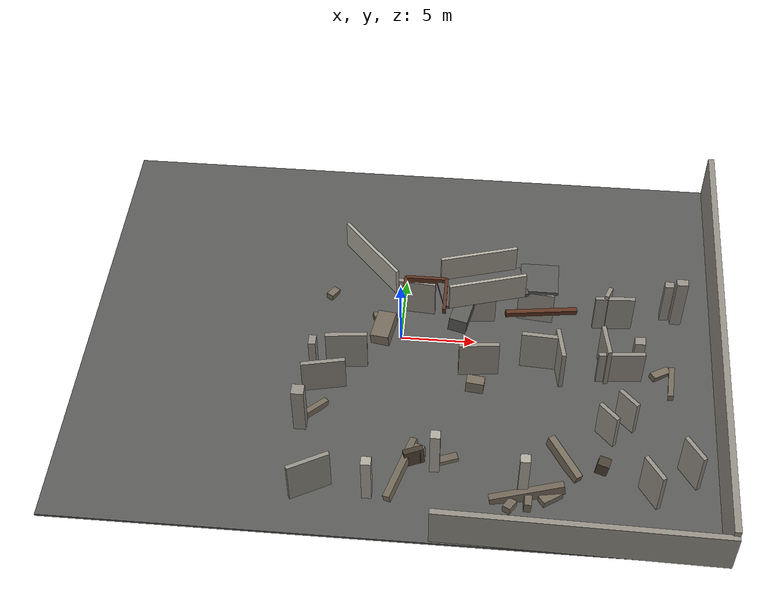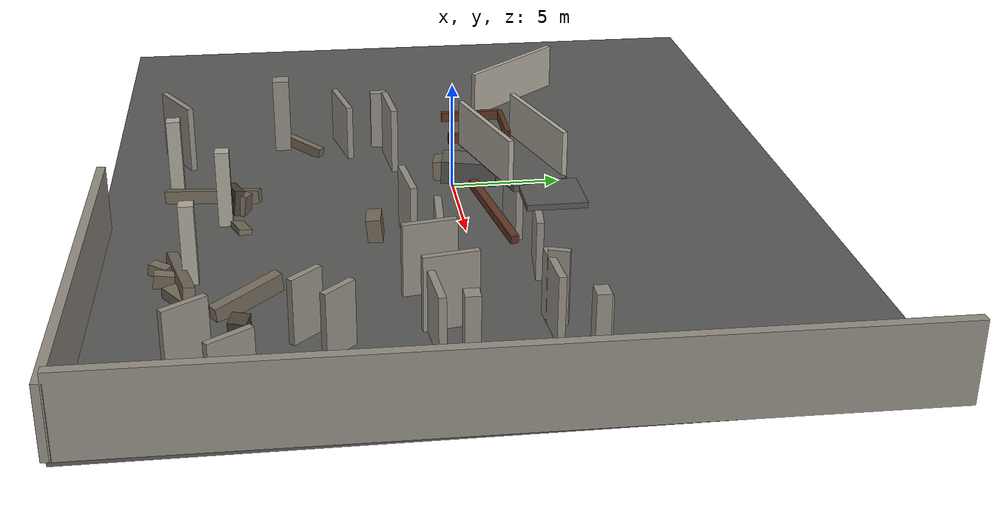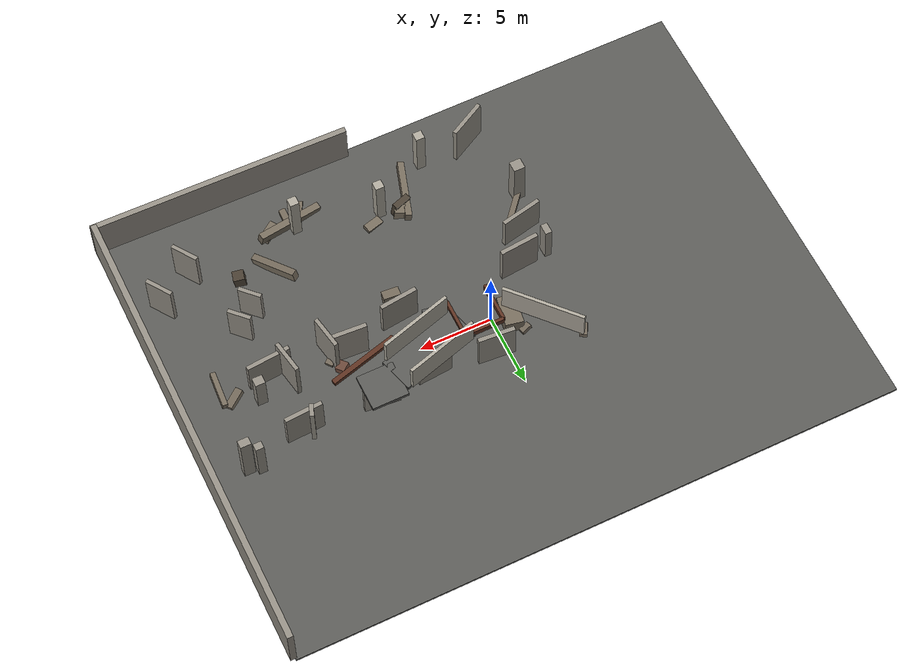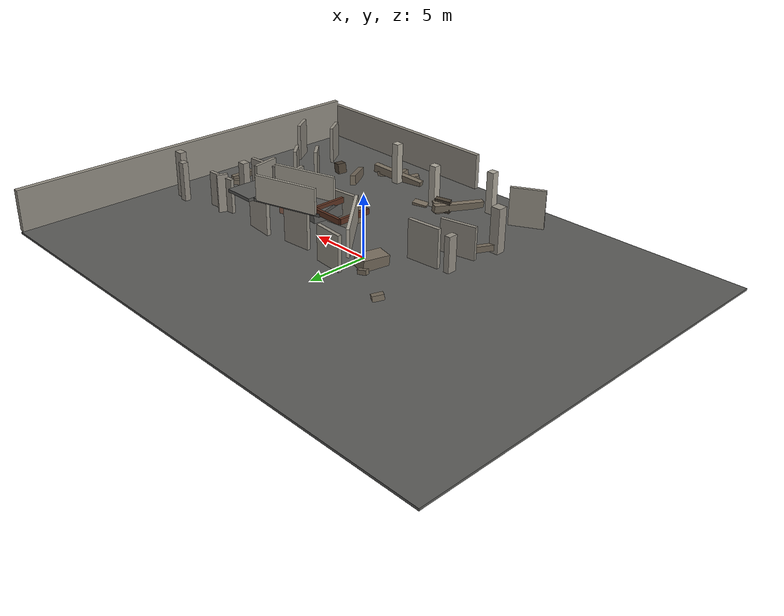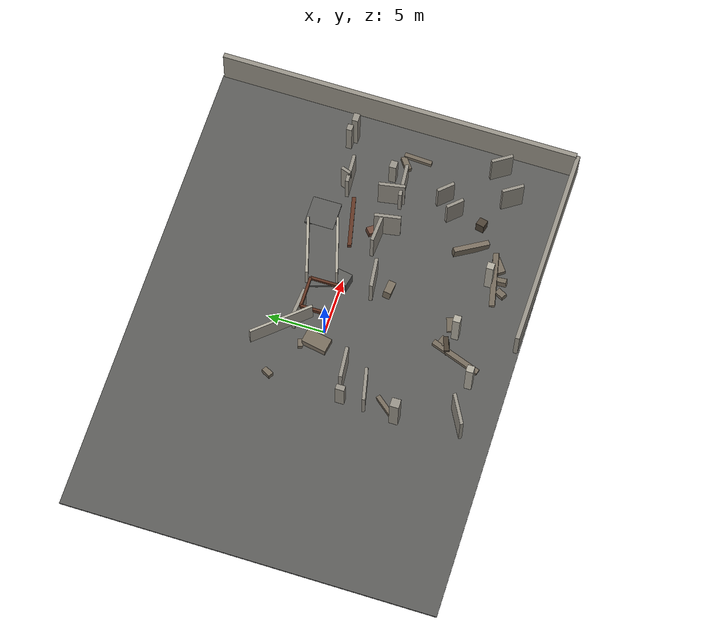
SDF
<sdf version="1.6">
 <model name="ruins_urban_01_medium">
  <static>true</static>
  <link name="000_floor_slab">
   <pose>0.00000 0.00000 -0.08000 0.00000 0.00000 0.00000</pose>
   <visual name="visual">
    <geometry><box><size>42.00000 32.00000 0.16000</size></box></geometry>
    <material>
     <ambient>0.350 0.350 0.340 1</ambient>
     <diffuse>0.350 0.350 0.340 1</diffuse>
     <specular>0.03 0.03 0.03 1</specular>
    </material>
   </visual>
   <collision name="collision">
    <geometry><box><size>42.00000 32.00000 0.16000</size></box></geometry>
    <surface>
     <contact><collide_bitmask>0x01</collide_bitmask></contact>
     <friction><ode><mu>1.0</mu><mu2>1.0</mu2></ode></friction>
    </surface>
   </collision>
  </link>
  <link name="004_south_boundary_east">
   <pose>12.00000 -15.85000 1.50000 0.00000 0.00000 -0.01800</pose>
   <visual name="visual">
    <geometry><box><size>18.00000 0.38000 3.00000</size></box></geometry>
    <material>
     <ambient>0.580 0.560 0.520 1</ambient>
     <diffuse>0.580 0.560 0.520 1</diffuse>
     <specular>0.03 0.03 0.03 1</specular>
    </material>
   </visual>
   <collision name="collision">
    <geometry><box><size>18.00000 0.38000 3.00000</size></box></geometry>
    <surface>
     <contact><collide_bitmask>0x01</collide_bitmask></contact>
     <friction><ode><mu>1.0</mu><mu2>1.0</mu2></ode></friction>
    </surface>
   </collision>
  </link>
  <link name="007_east_boundary">
   <pose>20.95000 0.00000 1.70000 0.00000 0.00000 -0.01000</pose>
   <visual name="visual">
    <geometry><box><size>0.42000 31.80000 3.40000</size></box></geometry>
    <material>
     <ambient>0.580 0.560 0.520 1</ambient>
     <diffuse>0.580 0.560 0.520 1</diffuse>
     <specular>0.03 0.03 0.03 1</specular>
    </material>
   </visual>
   <collision name="collision">
    <geometry><box><size>0.42000 31.80000 3.40000</size></box></geometry>
    <surface>
     <contact><collide_bitmask>0x01</collide_bitmask></contact>
     <friction><ode><mu>1.0</mu><mu2>1.0</mu2></ode></friction>
    </surface>
   </collision>
  </link>
  <link name="025_ground_corridor_s4_s5_right">
   <pose>-4.53651 -12.80806 1.57500 0.00000 0.00000 0.49935</pose>
   <visual name="visual">
    <geometry><box><size>2.76498 0.28000 3.15000</size></box></geometry>
    <material>
     <ambient>0.580 0.560 0.520 1</ambient>
     <diffuse>0.580 0.560 0.520 1</diffuse>
     <specular>0.03 0.03 0.03 1</specular>
    </material>
   </visual>
   <collision name="collision">
    <geometry><box><size>2.76498 0.28000 3.15000</size></box></geometry>
    <surface>
     <contact><collide_bitmask>0x01</collide_bitmask></contact>
     <friction><ode><mu>1.0</mu><mu2>1.0</mu2></ode></friction>
    </surface>
   </collision>
  </link>
  <link name="027_ground_corridor_g7_en1_right">
   <pose>13.64929 2.43806 1.57500 0.00000 0.00000 1.22007</pose>
   <visual name="visual">
    <geometry><box><size>0.86578 0.28000 3.15000</size></box></geometry>
    <material>
     <ambient>0.580 0.560 0.520 1</ambient>
     <diffuse>0.580 0.560 0.520 1</diffuse>
     <specular>0.03 0.03 0.03 1</specular>
    </material>
   </visual>
   <collision name="collision">
    <geometry><box><size>0.86578 0.28000 3.15000</size></box></geometry>
    <surface>
     <contact><collide_bitmask>0x01</collide_bitmask></contact>
     <friction><ode><mu>1.0</mu><mu2>1.0</mu2></ode></friction>
    </surface>
   </collision>
  </link>
  <link name="032_ground_corridor_g7_es1_left">
   <pose>13.46759 -1.69253 1.57500 0.00000 0.00000 -1.39713</pose>
   <visual name="visual">
    <geometry><box><size>2.28705 0.28000 3.15000</size></box></geometry>
    <material>
     <ambient>0.580 0.560 0.520 1</ambient>
     <diffuse>0.580 0.560 0.520 1</diffuse>
     <specular>0.03 0.03 0.03 1</specular>
    </material>
   </visual>
   <collision name="collision">
    <geometry><box><size>2.28705 0.28000 3.15000</size></box></geometry>
    <surface>
     <contact><collide_bitmask>0x01</collide_bitmask></contact>
     <friction><ode><mu>1.0</mu><mu2>1.0</mu2></ode></friction>
    </surface>
   </collision>
  </link>
  <link name="033_ground_corridor_g7_es1_right">
   <pose>10.53241 -2.20747 1.57500 0.00000 0.00000 -1.39713</pose>
   <visual name="visual">
    <geometry><box><size>2.28705 0.28000 3.15000</size></box></geometry>
    <material>
     <ambient>0.580 0.560 0.520 1</ambient>
     <diffuse>0.580 0.560 0.520 1</diffuse>
     <specular>0.03 0.03 0.03 1</specular>
    </material>
   </visual>
   <collision name="collision">
    <geometry><box><size>2.28705 0.28000 3.15000</size></box></geometry>
    <surface>
     <contact><collide_bitmask>0x01</collide_bitmask></contact>
     <friction><ode><mu>1.0</mu><mu2>1.0</mu2></ode></friction>
    </surface>
   </collision>
  </link>
  <link name="034_ground_corridor_es1_es2_left">
   <pose>14.87840 -6.05557 1.37500 0.00000 0.00000 -0.81317</pose>
   <visual name="visual">
    <geometry><box><size>1.59313 0.28000 2.75000</size></box></geometry>
    <material>
     <ambient>0.580 0.560 0.520 1</ambient>
     <diffuse>0.580 0.560 0.520 1</diffuse>
     <specular>0.03 0.03 0.03 1</specular>
    </material>
   </visual>
   <collision name="collision">
    <geometry><box><size>1.59313 0.28000 2.75000</size></box></geometry>
    <surface>
     <contact><collide_bitmask>0x01</collide_bitmask></contact>
     <friction><ode><mu>1.0</mu><mu2>1.0</mu2></ode></friction>
    </surface>
   </collision>
  </link>
  <link name="035_ground_corridor_es1_es2_right">
   <pose>13.62160 -7.24443 1.37500 0.00000 0.00000 -0.81317</pose>
   <visual name="visual">
    <geometry><box><size>1.59313 0.28000 2.75000</size></box></geometry>
    <material>
     <ambient>0.580 0.560 0.520 1</ambient>
     <diffuse>0.580 0.560 0.520 1</diffuse>
     <specular>0.03 0.03 0.03 1</specular>
    </material>
   </visual>
   <collision name="collision">
    <geometry><box><size>1.59313 0.28000 2.75000</size></box></geometry>
    <surface>
     <contact><collide_bitmask>0x01</collide_bitmask></contact>
     <friction><ode><mu>1.0</mu><mu2>1.0</mu2></ode></friction>
    </surface>
   </collision>
  </link>
  <link name="036_ground_corridor_es2_dead_se_left">
   <pose>18.73975 -9.92350 1.57500 0.00000 0.00000 -0.98279</pose>
   <visual name="visual">
    <geometry><box><size>1.90833 0.28000 3.15000</size></box></geometry>
    <material>
     <ambient>0.580 0.560 0.520 1</ambient>
     <diffuse>0.580 0.560 0.520 1</diffuse>
     <specular>0.03 0.03 0.03 1</specular>
    </material>
   </visual>
   <collision name="collision">
    <geometry><box><size>1.90833 0.28000 3.15000</size></box></geometry>
    <surface>
     <contact><collide_bitmask>0x01</collide_bitmask></contact>
     <friction><ode><mu>1.0</mu><mu2>1.0</mu2></ode></friction>
    </surface>
   </collision>
  </link>
  <link name="037_ground_corridor_es2_dead_se_right">
   <pose>16.26025 -11.57650 1.57500 0.00000 0.00000 -0.98279</pose>
   <visual name="visual">
    <geometry><box><size>1.90833 0.28000 3.15000</size></box></geometry>
    <material>
     <ambient>0.580 0.560 0.520 1</ambient>
     <diffuse>0.580 0.560 0.520 1</diffuse>
     <specular>0.03 0.03 0.03 1</specular>
    </material>
   </visual>
   <collision name="collision">
    <geometry><box><size>1.90833 0.28000 3.15000</size></box></geometry>
    <surface>
     <contact><collide_bitmask>0x01</collide_bitmask></contact>
     <friction><ode><mu>1.0</mu><mu2>1.0</mu2></ode></friction>
    </surface>
   </collision>
  </link>
  <link name="040_spine_broken_panel_04">
   <pose>0.85000 2.55000 1.42500 0.00000 0.00000 -0.07983</pose>
   <visual name="visual">
    <geometry><box><size>2.50799 0.30000 2.85000</size></box></geometry>
    <material>
     <ambient>0.580 0.560 0.520 1</ambient>
     <diffuse>0.580 0.560 0.520 1</diffuse>
     <specular>0.03 0.03 0.03 1</specular>
    </material>
   </visual>
   <collision name="collision">
    <geometry><box><size>2.50799 0.30000 2.85000</size></box></geometry>
    <surface>
     <contact><collide_bitmask>0x01</collide_bitmask></contact>
     <friction><ode><mu>1.0</mu><mu2>1.0</mu2></ode></friction>
    </surface>
   </collision>
  </link>
  <link name="041_spine_broken_panel_05">
   <pose>5.00000 2.05000 1.55000 0.00000 0.00000 0.08314</pose>
   <visual name="visual">
    <geometry><box><size>2.40832 0.30000 3.10000</size></box></geometry>
    <material>
     <ambient>0.580 0.560 0.520 1</ambient>
     <diffuse>0.580 0.560 0.520 1</diffuse>
     <specular>0.03 0.03 0.03 1</specular>
    </material>
   </visual>
   <collision name="collision">
    <geometry><box><size>2.40832 0.30000 3.10000</size></box></geometry>
    <surface>
     <contact><collide_bitmask>0x01</collide_bitmask></contact>
     <friction><ode><mu>1.0</mu><mu2>1.0</mu2></ode></friction>
    </surface>
   </collision>
  </link>
  <link name="042_spine_broken_panel_06">
   <pose>8.90000 2.47500 1.30000 0.00000 0.00000 -0.10379</pose>
   <visual name="visual">
    <geometry><box><size>2.41299 0.30000 2.60000</size></box></geometry>
    <material>
     <ambient>0.580 0.560 0.520 1</ambient>
     <diffuse>0.580 0.560 0.520 1</diffuse>
     <specular>0.03 0.03 0.03 1</specular>
    </material>
   </visual>
   <collision name="collision">
    <geometry><box><size>2.41299 0.30000 2.60000</size></box></geometry>
    <surface>
     <contact><collide_bitmask>0x01</collide_bitmask></contact>
     <friction><ode><mu>1.0</mu><mu2>1.0</mu2></ode></friction>
    </surface>
   </collision>
  </link>
  <link name="043_spine_broken_panel_07">
   <pose>14.10000 2.17500 1.42500 0.00000 0.00000 0.05763</pose>
   <visual name="visual">
    <geometry><box><size>2.60432 0.30000 2.85000</size></box></geometry>
    <material>
     <ambient>0.580 0.560 0.520 1</ambient>
     <diffuse>0.580 0.560 0.520 1</diffuse>
     <specular>0.03 0.03 0.03 1</specular>
    </material>
   </visual>
   <collision name="collision">
    <geometry><box><size>2.60432 0.30000 2.85000</size></box></geometry>
    <surface>
     <contact><collide_bitmask>0x01</collide_bitmask></contact>
     <friction><ode><mu>1.0</mu><mu2>1.0</mu2></ode></friction>
    </surface>
   </collision>
  </link>
  <link name="046_spine_broken_panel_11">
   <pose>-3.35000 -2.67500 1.55000 0.00000 0.00000 0.09233</pose>
   <visual name="visual">
    <geometry><box><size>2.71155 0.30000 3.10000</size></box></geometry>
    <material>
     <ambient>0.580 0.560 0.520 1</ambient>
     <diffuse>0.580 0.560 0.520 1</diffuse>
     <specular>0.03 0.03 0.03 1</specular>
    </material>
   </visual>
   <collision name="collision">
    <geometry><box><size>2.71155 0.30000 3.10000</size></box></geometry>
    <surface>
     <contact><collide_bitmask>0x01</collide_bitmask></contact>
     <friction><ode><mu>1.0</mu><mu2>1.0</mu2></ode></friction>
    </surface>
   </collision>
  </link>
  <link name="047_spine_broken_panel_13">
   <pose>5.30000 -2.60000 1.42500 0.00000 0.00000 0.11488</pose>
   <visual name="visual">
    <geometry><box><size>2.61725 0.30000 2.85000</size></box></geometry>
    <material>
     <ambient>0.580 0.560 0.520 1</ambient>
     <diffuse>0.580 0.560 0.520 1</diffuse>
     <specular>0.03 0.03 0.03 1</specular>
    </material>
   </visual>
   <collision name="collision">
    <geometry><box><size>2.61725 0.30000 2.85000</size></box></geometry>
    <surface>
     <contact><collide_bitmask>0x01</collide_bitmask></contact>
     <friction><ode><mu>1.0</mu><mu2>1.0</mu2></ode></friction>
    </surface>
   </collision>
  </link>
  <link name="048_spine_broken_panel_14">
   <pose>9.20000 -1.67500 1.55000 0.00000 0.00000 -0.06242</pose>
   <visual name="visual">
    <geometry><box><size>2.40468 0.30000 3.10000</size></box></geometry>
    <material>
     <ambient>0.580 0.560 0.520 1</ambient>
     <diffuse>0.580 0.560 0.520 1</diffuse>
     <specular>0.03 0.03 0.03 1</specular>
    </material>
   </visual>
   <collision name="collision">
    <geometry><box><size>2.40468 0.30000 3.10000</size></box></geometry>
    <surface>
     <contact><collide_bitmask>0x01</collide_bitmask></contact>
     <friction><ode><mu>1.0</mu><mu2>1.0</mu2></ode></friction>
    </surface>
   </collision>
  </link>
  <link name="049_spine_broken_panel_15">
   <pose>14.50000 -2.42500 1.30000 0.00000 0.00000 0.08314</pose>
   <visual name="visual">
    <geometry><box><size>3.01040 0.30000 2.60000</size></box></geometry>
    <material>
     <ambient>0.580 0.560 0.520 1</ambient>
     <diffuse>0.580 0.560 0.520 1</diffuse>
     <specular>0.03 0.03 0.03 1</specular>
    </material>
   </visual>
   <collision name="collision">
    <geometry><box><size>3.01040 0.30000 2.60000</size></box></geometry>
    <surface>
     <contact><collide_bitmask>0x01</collide_bitmask></contact>
     <friction><ode><mu>1.0</mu><mu2>1.0</mu2></ode></friction>
    </surface>
   </collision>
  </link>
  <link name="057_fixed_column_09">
   <pose>-1.00000 -12.80000 1.75000 0.00000 0.00000 0.00000</pose>
   <visual name="visual">
    <geometry><box><size>0.62000 0.62000 3.50000</size></box></geometry>
    <material>
     <ambient>0.680 0.660 0.610 1</ambient>
     <diffuse>0.680 0.660 0.610 1</diffuse>
     <specular>0.03 0.03 0.03 1</specular>
    </material>
   </visual>
   <collision name="collision">
    <geometry><box><size>0.62000 0.62000 3.50000</size></box></geometry>
    <surface>
     <contact><collide_bitmask>0x01</collide_bitmask></contact>
     <friction><ode><mu>1.0</mu><mu2>1.0</mu2></ode></friction>
    </surface>
   </collision>
  </link>
  <link name="058_fixed_column_10">
   <pose>3.00000 -10.50000 1.75000 0.00000 0.00000 0.00000</pose>
   <visual name="visual">
    <geometry><box><size>0.62000 0.62000 3.50000</size></box></geometry>
    <material>
     <ambient>0.680 0.660 0.610 1</ambient>
     <diffuse>0.680 0.660 0.610 1</diffuse>
     <specular>0.03 0.03 0.03 1</specular>
    </material>
   </visual>
   <collision name="collision">
    <geometry><box><size>0.62000 0.62000 3.50000</size></box></geometry>
    <surface>
     <contact><collide_bitmask>0x01</collide_bitmask></contact>
     <friction><ode><mu>1.0</mu><mu2>1.0</mu2></ode></friction>
    </surface>
   </collision>
  </link>
  <link name="059_fixed_column_11">
   <pose>8.50000 -11.80000 1.75000 0.00000 0.00000 0.00000</pose>
   <visual name="visual">
    <geometry><box><size>0.62000 0.62000 3.50000</size></box></geometry>
    <material>
     <ambient>0.680 0.660 0.610 1</ambient>
     <diffuse>0.680 0.660 0.610 1</diffuse>
     <specular>0.03 0.03 0.03 1</specular>
    </material>
   </visual>
   <collision name="collision">
    <geometry><box><size>0.62000 0.62000 3.50000</size></box></geometry>
    <surface>
     <contact><collide_bitmask>0x01</collide_bitmask></contact>
     <friction><ode><mu>1.0</mu><mu2>1.0</mu2></ode></friction>
    </surface>
   </collision>
  </link>
  <link name="060_overflight_rubble_gate">
   <pose>-1.20000 0.35000 0.45000 0.05000 -0.06000 -0.18000</pose>
   <visual name="visual">
    <geometry><box><size>1.25000 2.20000 0.90000</size></box></geometry>
    <material>
     <ambient>0.460 0.420 0.360 1</ambient>
     <diffuse>0.460 0.420 0.360 1</diffuse>
     <specular>0.03 0.03 0.03 1</specular>
    </material>
   </visual>
   <collision name="collision">
    <geometry><box><size>1.25000 2.20000 0.90000</size></box></geometry>
    <surface>
     <contact><collide_bitmask>0x01</collide_bitmask></contact>
     <friction><ode><mu>1.0</mu><mu2>1.0</mu2></ode></friction>
    </surface>
   </collision>
  </link>
  <link name="061_underflight_hanging_gate">
   <pose>4.00000 0.25000 2.55000 -0.04000 0.08000 -0.20000</pose>
   <visual name="visual">
    <geometry><box><size>1.20000 2.40000 1.05000</size></box></geometry>
    <material>
     <ambient>0.350 0.350 0.340 1</ambient>
     <diffuse>0.350 0.350 0.340 1</diffuse>
     <specular>0.03 0.03 0.03 1</specular>
    </material>
   </visual>
   <collision name="collision">
    <geometry><box><size>1.20000 2.40000 1.05000</size></box></geometry>
    <surface>
     <contact><collide_bitmask>0x01</collide_bitmask></contact>
     <friction><ode><mu>1.0</mu><mu2>1.0</mu2></ode></friction>
    </surface>
   </collision>
  </link>
  <link name="062_east_slanted_beam">
   <pose>9.20000 0.55000 2.85000 0.00000 0.10000 0.22000</pose>
   <visual name="visual">
    <geometry><box><size>4.80000 0.34000 0.34000</size></box></geometry>
    <material>
     <ambient>0.370 0.200 0.130 1</ambient>
     <diffuse>0.370 0.200 0.130 1</diffuse>
     <specular>0.03 0.03 0.03 1</specular>
    </material>
   </visual>
   <collision name="collision">
    <geometry><box><size>4.80000 0.34000 0.34000</size></box></geometry>
    <surface>
     <contact><collide_bitmask>0x01</collide_bitmask></contact>
     <friction><ode><mu>1.0</mu><mu2>1.0</mu2></ode></friction>
    </surface>
   </collision>
  </link>
  <link name="075_upper_walkway_u4_uc">
   <pose>5.25000 1.90000 3.36000 0.00000 0.00000 -2.85626</pose>
   <visual name="visual">
    <geometry><box><size>5.71601 2.45000 0.24000</size></box></geometry>
    <material>
     <ambient>0.350 0.350 0.340 1</ambient>
     <diffuse>0.350 0.350 0.340 1</diffuse>
     <specular>0.03 0.03 0.03 1</specular>
    </material>
   </visual>
   <collision name="collision">
    <geometry><box><size>5.71601 2.45000 0.24000</size></box></geometry>
    <surface>
     <contact><collide_bitmask>0x01</collide_bitmask></contact>
     <friction><ode><mu>1.0</mu><mu2>1.0</mu2></ode></friction>
    </surface>
   </collision>
  </link>
  <link name="076_upper_corridor_u4_uc_left">
   <pose>5.59762 0.71493 4.38000 0.00000 0.00000 -2.85626</pose>
   <visual name="visual">
    <geometry><box><size>5.11601 0.22000 2.00000</size></box></geometry>
    <material>
     <ambient>0.680 0.660 0.610 1</ambient>
     <diffuse>0.680 0.660 0.610 1</diffuse>
     <specular>0.03 0.03 0.03 1</specular>
    </material>
   </visual>
   <collision name="collision">
    <geometry><box><size>5.11601 0.22000 2.00000</size></box></geometry>
    <surface>
     <contact><collide_bitmask>0x01</collide_bitmask></contact>
     <friction><ode><mu>1.0</mu><mu2>1.0</mu2></ode></friction>
    </surface>
   </collision>
  </link>
  <link name="077_upper_corridor_u4_uc_right">
   <pose>4.90238 3.08507 4.38000 0.00000 0.00000 -2.85626</pose>
   <visual name="visual">
    <geometry><box><size>5.11601 0.22000 2.00000</size></box></geometry>
    <material>
     <ambient>0.680 0.660 0.610 1</ambient>
     <diffuse>0.680 0.660 0.610 1</diffuse>
     <specular>0.03 0.03 0.03 1</specular>
    </material>
   </visual>
   <collision name="collision">
    <geometry><box><size>5.11601 0.22000 2.00000</size></box></geometry>
    <surface>
     <contact><collide_bitmask>0x01</collide_bitmask></contact>
     <friction><ode><mu>1.0</mu><mu2>1.0</mu2></ode></friction>
    </surface>
   </collision>
  </link>
  <link name="079_upper_corridor_uc_ua_left">
   <pose>-2.17387 3.08044 4.38000 0.00000 0.00000 2.29644</pose>
   <visual name="visual">
    <geometry><box><size>5.58794 0.22000 2.00000</size></box></geometry>
    <material>
     <ambient>0.680 0.660 0.610 1</ambient>
     <diffuse>0.680 0.660 0.610 1</diffuse>
     <specular>0.03 0.03 0.03 1</specular>
    </material>
   </visual>
   <collision name="collision">
    <geometry><box><size>5.58794 0.22000 2.00000</size></box></geometry>
    <surface>
     <contact><collide_bitmask>0x01</collide_bitmask></contact>
     <friction><ode><mu>1.0</mu><mu2>1.0</mu2></ode></friction>
    </surface>
   </collision>
  </link>
  <link name="084_upper_node_platform_u4">
   <pose>9.00000 3.00000 3.36000 0.00000 0.00000 0.00000</pose>
   <visual name="visual">
    <geometry><box><size>2.50000 2.50000 0.24000</size></box></geometry>
    <material>
     <ambient>0.350 0.350 0.340 1</ambient>
     <diffuse>0.350 0.350 0.340 1</diffuse>
     <specular>0.03 0.03 0.03 1</specular>
    </material>
   </visual>
   <collision name="collision">
    <geometry><box><size>2.50000 2.50000 0.24000</size></box></geometry>
    <surface>
     <contact><collide_bitmask>0x01</collide_bitmask></contact>
     <friction><ode><mu>1.0</mu><mu2>1.0</mu2></ode></friction>
    </surface>
   </collision>
  </link>
  <link name="088_connector_c_frame_0">
   <pose>0.15000 0.80000 3.55000 0.00000 0.00000 0.00000</pose>
   <visual name="visual">
    <geometry><box><size>0.22000 2.70000 0.42000</size></box></geometry>
    <material>
     <ambient>0.370 0.200 0.130 1</ambient>
     <diffuse>0.370 0.200 0.130 1</diffuse>
     <specular>0.03 0.03 0.03 1</specular>
    </material>
   </visual>
   <collision name="collision">
    <geometry><box><size>0.22000 2.70000 0.42000</size></box></geometry>
    <surface>
     <contact><collide_bitmask>0x01</collide_bitmask></contact>
     <friction><ode><mu>1.0</mu><mu2>1.0</mu2></ode></friction>
    </surface>
   </collision>
  </link>
  <link name="089_connector_c_frame_1">
   <pose>2.85000 0.80000 3.55000 0.00000 0.00000 0.00000</pose>
   <visual name="visual">
    <geometry><box><size>0.22000 2.70000 0.42000</size></box></geometry>
    <material>
     <ambient>0.370 0.200 0.130 1</ambient>
     <diffuse>0.370 0.200 0.130 1</diffuse>
     <specular>0.03 0.03 0.03 1</specular>
    </material>
   </visual>
   <collision name="collision">
    <geometry><box><size>0.22000 2.70000 0.42000</size></box></geometry>
    <surface>
     <contact><collide_bitmask>0x01</collide_bitmask></contact>
     <friction><ode><mu>1.0</mu><mu2>1.0</mu2></ode></friction>
    </surface>
   </collision>
  </link>
  <link name="090_connector_c_frame_3">
   <pose>1.50000 2.15000 3.55000 0.00000 0.00000 0.00000</pose>
   <visual name="visual">
    <geometry><box><size>2.70000 0.22000 0.42000</size></box></geometry>
    <material>
     <ambient>0.370 0.200 0.130 1</ambient>
     <diffuse>0.370 0.200 0.130 1</diffuse>
     <specular>0.03 0.03 0.03 1</specular>
    </material>
   </visual>
   <collision name="collision">
    <geometry><box><size>2.70000 0.22000 0.42000</size></box></geometry>
    <surface>
     <contact><collide_bitmask>0x01</collide_bitmask></contact>
     <friction><ode><mu>1.0</mu><mu2>1.0</mu2></ode></friction>
    </surface>
   </collision>
  </link>
  <link name="092_medium_random_column_01">
   <pose>18.41635 3.04236 1.93369 0.00000 0.00000 0.00000</pose>
   <visual name="visual">
    <geometry><box><size>0.75193 0.55234 3.86739</size></box></geometry>
    <material>
     <ambient>0.580 0.560 0.520 1</ambient>
     <diffuse>0.580 0.560 0.520 1</diffuse>
     <specular>0.03 0.03 0.03 1</specular>
    </material>
   </visual>
   <collision name="collision">
    <geometry><box><size>0.75193 0.55234 3.86739</size></box></geometry>
    <surface>
     <contact><collide_bitmask>0x01</collide_bitmask></contact>
     <friction><ode><mu>1.0</mu><mu2>1.0</mu2></ode></friction>
    </surface>
   </collision>
  </link>
  <link name="094_medium_random_column_03">
   <pose>15.68716 -1.18079 1.30123 0.00000 0.00000 0.00000</pose>
   <visual name="visual">
    <geometry><box><size>0.68079 0.61655 2.60247</size></box></geometry>
    <material>
     <ambient>0.580 0.560 0.520 1</ambient>
     <diffuse>0.580 0.560 0.520 1</diffuse>
     <specular>0.03 0.03 0.03 1</specular>
    </material>
   </visual>
   <collision name="collision">
    <geometry><box><size>0.68079 0.61655 2.60247</size></box></geometry>
    <surface>
     <contact><collide_bitmask>0x01</collide_bitmask></contact>
     <friction><ode><mu>1.0</mu><mu2>1.0</mu2></ode></friction>
    </surface>
   </collision>
  </link>
  <link name="096_medium_random_column_05">
   <pose>-5.51084 -3.06976 1.41315 0.00000 0.00000 0.00000</pose>
   <visual name="visual">
    <geometry><box><size>0.47084 0.76548 2.82630</size></box></geometry>
    <material>
     <ambient>0.580 0.560 0.520 1</ambient>
     <diffuse>0.580 0.560 0.520 1</diffuse>
     <specular>0.03 0.03 0.03 1</specular>
    </material>
   </visual>
   <collision name="collision">
    <geometry><box><size>0.47084 0.76548 2.82630</size></box></geometry>
    <surface>
     <contact><collide_bitmask>0x01</collide_bitmask></contact>
     <friction><ode><mu>1.0</mu><mu2>1.0</mu2></ode></friction>
    </surface>
   </collision>
  </link>
  <link name="097_medium_random_column_06">
   <pose>-5.77268 -7.83261 1.79768 0.00000 0.00000 0.00000</pose>
   <visual name="visual">
    <geometry><box><size>0.79634 0.77568 3.59535</size></box></geometry>
    <material>
     <ambient>0.580 0.560 0.520 1</ambient>
     <diffuse>0.580 0.560 0.520 1</diffuse>
     <specular>0.03 0.03 0.03 1</specular>
    </material>
   </visual>
   <collision name="collision">
    <geometry><box><size>0.79634 0.77568 3.59535</size></box></geometry>
    <surface>
     <contact><collide_bitmask>0x01</collide_bitmask></contact>
     <friction><ode><mu>1.0</mu><mu2>1.0</mu2></ode></friction>
    </surface>
   </collision>
  </link>
  <link name="100_medium_random_column_09">
   <pose>17.64515 3.34895 1.63315 0.00000 0.00000 0.00000</pose>
   <visual name="visual">
    <geometry><box><size>0.57404 0.49915 3.26629</size></box></geometry>
    <material>
     <ambient>0.580 0.560 0.520 1</ambient>
     <diffuse>0.580 0.560 0.520 1</diffuse>
     <specular>0.03 0.03 0.03 1</specular>
    </material>
   </visual>
   <collision name="collision">
    <geometry><box><size>0.57404 0.49915 3.26629</size></box></geometry>
    <surface>
     <contact><collide_bitmask>0x01</collide_bitmask></contact>
     <friction><ode><mu>1.0</mu><mu2>1.0</mu2></ode></friction>
    </surface>
   </collision>
  </link>
  <link name="102_medium_rubble_001">
   <pose>8.82942 -12.86332 0.31580 0.15020 -0.09264 3.13293</pose>
   <visual name="visual">
    <geometry><box><size>0.44918 0.84931 0.63160</size></box></geometry>
    <material>
     <ambient>0.460 0.420 0.360 1</ambient>
     <diffuse>0.460 0.420 0.360 1</diffuse>
     <specular>0.03 0.03 0.03 1</specular>
    </material>
   </visual>
   <collision name="collision">
    <geometry><box><size>0.44918 0.84931 0.63160</size></box></geometry>
    <surface>
     <contact><collide_bitmask>0x01</collide_bitmask></contact>
     <friction><ode><mu>1.0</mu><mu2>1.0</mu2></ode></friction>
    </surface>
   </collision>
  </link>
  <link name="112_medium_rubble_011">
   <pose>5.17766 -4.03101 0.54032 -0.09687 -0.03720 3.03580</pose>
   <visual name="visual">
    <geometry><box><size>1.16467 0.65789 1.08064</size></box></geometry>
    <material>
     <ambient>0.460 0.420 0.360 1</ambient>
     <diffuse>0.460 0.420 0.360 1</diffuse>
     <specular>0.03 0.03 0.03 1</specular>
    </material>
   </visual>
   <collision name="collision">
    <geometry><box><size>1.16467 0.65789 1.08064</size></box></geometry>
    <surface>
     <contact><collide_bitmask>0x01</collide_bitmask></contact>
     <friction><ode><mu>1.0</mu><mu2>1.0</mu2></ode></friction>
    </surface>
   </collision>
  </link>
  <link name="119_medium_rubble_018">
   <pose>17.24288 -1.89857 0.20262 0.08947 0.14604 0.61765</pose>
   <visual name="visual">
    <geometry><box><size>1.38914 0.51530 0.40525</size></box></geometry>
    <material>
     <ambient>0.460 0.420 0.360 1</ambient>
     <diffuse>0.460 0.420 0.360 1</diffuse>
     <specular>0.03 0.03 0.03 1</specular>
    </material>
   </visual>
   <collision name="collision">
    <geometry><box><size>1.38914 0.51530 0.40525</size></box></geometry>
    <surface>
     <contact><collide_bitmask>0x01</collide_bitmask></contact>
     <friction><ode><mu>1.0</mu><mu2>1.0</mu2></ode></friction>
    </surface>
   </collision>
  </link>
  <link name="126_medium_rubble_025">
   <pose>3.79876 -9.82527 0.12467 -0.17850 -0.08355 0.31133</pose>
   <visual name="visual">
    <geometry><box><size>1.23499 0.59315 0.24934</size></box></geometry>
    <material>
     <ambient>0.460 0.420 0.360 1</ambient>
     <diffuse>0.460 0.420 0.360 1</diffuse>
     <specular>0.03 0.03 0.03 1</specular>
    </material>
   </visual>
   <collision name="collision">
    <geometry><box><size>1.23499 0.59315 0.24934</size></box></geometry>
    <surface>
     <contact><collide_bitmask>0x01</collide_bitmask></contact>
     <friction><ode><mu>1.0</mu><mu2>1.0</mu2></ode></friction>
    </surface>
   </collision>
  </link>
  <link name="128_medium_rubble_027">
   <pose>-4.99669 3.42055 0.21033 0.11172 -0.07958 2.61295</pose>
   <visual name="visual">
    <geometry><box><size>0.48795 0.86389 0.42067</size></box></geometry>
    <material>
     <ambient>0.460 0.420 0.360 1</ambient>
     <diffuse>0.460 0.420 0.360 1</diffuse>
     <specular>0.03 0.03 0.03 1</specular>
    </material>
   </visual>
   <collision name="collision">
    <geometry><box><size>0.48795 0.86389 0.42067</size></box></geometry>
    <surface>
     <contact><collide_bitmask>0x01</collide_bitmask></contact>
     <friction><ode><mu>1.0</mu><mu2>1.0</mu2></ode></friction>
    </surface>
   </collision>
  </link>
  <link name="133_medium_rubble_032">
   <pose>10.12676 -0.91239 0.25962 0.13016 0.02665 0.68077</pose>
   <visual name="visual">
    <geometry><box><size>0.70069 0.65649 0.51924</size></box></geometry>
    <material>
     <ambient>0.430 0.290 0.230 1</ambient>
     <diffuse>0.430 0.290 0.230 1</diffuse>
     <specular>0.03 0.03 0.03 1</specular>
    </material>
   </visual>
   <collision name="collision">
    <geometry><box><size>0.70069 0.65649 0.51924</size></box></geometry>
    <surface>
     <contact><collide_bitmask>0x01</collide_bitmask></contact>
     <friction><ode><mu>1.0</mu><mu2>1.0</mu2></ode></friction>
    </surface>
   </collision>
  </link>
  <link name="136_medium_rubble_035">
   <pose>13.43197 -9.76920 0.44179 0.04873 -0.12495 2.88497</pose>
   <visual name="visual">
    <geometry><box><size>0.75995 0.73821 0.88359</size></box></geometry>
    <material>
     <ambient>0.290 0.250 0.200 1</ambient>
     <diffuse>0.290 0.250 0.200 1</diffuse>
     <specular>0.03 0.03 0.03 1</specular>
    </material>
   </visual>
   <collision name="collision">
    <geometry><box><size>0.75995 0.73821 0.88359</size></box></geometry>
    <surface>
     <contact><collide_bitmask>0x01</collide_bitmask></contact>
     <friction><ode><mu>1.0</mu><mu2>1.0</mu2></ode></friction>
    </surface>
   </collision>
  </link>
  <link name="140_medium_rubble_039">
   <pose>1.89387 -9.78260 0.46484 -0.09648 0.11422 1.13711</pose>
   <visual name="visual">
    <geometry><box><size>0.63654 0.72721 0.92969</size></box></geometry>
    <material>
     <ambient>0.460 0.420 0.360 1</ambient>
     <diffuse>0.460 0.420 0.360 1</diffuse>
     <specular>0.03 0.03 0.03 1</specular>
    </material>
   </visual>
   <collision name="collision">
    <geometry><box><size>0.63654 0.72721 0.92969</size></box></geometry>
    <surface>
     <contact><collide_bitmask>0x01</collide_bitmask></contact>
     <friction><ode><mu>1.0</mu><mu2>1.0</mu2></ode></friction>
    </surface>
   </collision>
  </link>
  <link name="142_medium_rubble_041">
   <pose>10.22839 -12.23552 0.21949 -0.03897 0.03621 0.61856</pose>
   <visual name="visual">
    <geometry><box><size>1.41985 0.64837 0.43898</size></box></geometry>
    <material>
     <ambient>0.460 0.420 0.360 1</ambient>
     <diffuse>0.460 0.420 0.360 1</diffuse>
     <specular>0.03 0.03 0.03 1</specular>
    </material>
   </visual>
   <collision name="collision">
    <geometry><box><size>1.41985 0.64837 0.43898</size></box></geometry>
    <surface>
     <contact><collide_bitmask>0x01</collide_bitmask></contact>
     <friction><ode><mu>1.0</mu><mu2>1.0</mu2></ode></friction>
    </surface>
   </collision>
  </link>
  <link name="147_medium_rubble_046">
   <pose>7.75467 -13.09849 0.23885 0.12281 0.05288 2.61101</pose>
   <visual name="visual">
    <geometry><box><size>0.53341 0.83139 0.47771</size></box></geometry>
    <material>
     <ambient>0.460 0.420 0.360 1</ambient>
     <diffuse>0.460 0.420 0.360 1</diffuse>
     <specular>0.03 0.03 0.03 1</specular>
    </material>
   </visual>
   <collision name="collision">
    <geometry><box><size>0.53341 0.83139 0.47771</size></box></geometry>
    <surface>
     <contact><collide_bitmask>0x01</collide_bitmask></contact>
     <friction><ode><mu>1.0</mu><mu2>1.0</mu2></ode></friction>
    </surface>
   </collision>
  </link>
  <link name="150_medium_rubble_049">
   <pose>1.65660 -10.11916 0.57461 -0.06272 0.12580 1.91922</pose>
   <visual name="visual">
    <geometry><box><size>0.41640 1.26011 1.14922</size></box></geometry>
    <material>
     <ambient>0.290 0.250 0.200 1</ambient>
     <diffuse>0.290 0.250 0.200 1</diffuse>
     <specular>0.03 0.03 0.03 1</specular>
    </material>
   </visual>
   <collision name="collision">
    <geometry><box><size>0.41640 1.26011 1.14922</size></box></geometry>
    <surface>
     <contact><collide_bitmask>0x01</collide_bitmask></contact>
     <friction><ode><mu>1.0</mu><mu2>1.0</mu2></ode></friction>
    </surface>
   </collision>
  </link>
  <link name="151_medium_rubble_050">
   <pose>10.67884 -1.62389 0.15572 0.17966 0.03464 2.24487</pose>
   <visual name="visual">
    <geometry><box><size>0.53990 0.35906 0.31143</size></box></geometry>
    <material>
     <ambient>0.460 0.420 0.360 1</ambient>
     <diffuse>0.460 0.420 0.360 1</diffuse>
     <specular>0.03 0.03 0.03 1</specular>
    </material>
   </visual>
   <collision name="collision">
    <geometry><box><size>0.53990 0.35906 0.31143</size></box></geometry>
    <surface>
     <contact><collide_bitmask>0x01</collide_bitmask></contact>
     <friction><ode><mu>1.0</mu><mu2>1.0</mu2></ode></friction>
    </surface>
   </collision>
  </link>
  <link name="152_medium_rubble_051">
   <pose>-1.67333 1.64486 0.18356 0.05521 0.15692 0.30247</pose>
   <visual name="visual">
    <geometry><box><size>0.71886 0.40551 0.36712</size></box></geometry>
    <material>
     <ambient>0.460 0.420 0.360 1</ambient>
     <diffuse>0.460 0.420 0.360 1</diffuse>
     <specular>0.03 0.03 0.03 1</specular>
    </material>
   </visual>
   <collision name="collision">
    <geometry><box><size>0.71886 0.40551 0.36712</size></box></geometry>
    <surface>
     <contact><collide_bitmask>0x01</collide_bitmask></contact>
     <friction><ode><mu>1.0</mu><mu2>1.0</mu2></ode></friction>
    </surface>
   </collision>
  </link>
  <link name="157_medium_collapsed_wall_04">
   <pose>8.76852 -12.22047 0.36395 -0.10881 -0.13016 0.20442</pose>
   <visual name="visual">
    <geometry><box><size>4.68017 0.47457 0.69651</size></box></geometry>
    <material>
     <ambient>0.460 0.420 0.360 1</ambient>
     <diffuse>0.460 0.420 0.360 1</diffuse>
     <specular>0.03 0.03 0.03 1</specular>
    </material>
   </visual>
   <collision name="collision">
    <geometry><box><size>4.68017 0.47457 0.69651</size></box></geometry>
    <surface>
     <contact><collide_bitmask>0x01</collide_bitmask></contact>
     <friction><ode><mu>1.0</mu><mu2>1.0</mu2></ode></friction>
    </surface>
   </collision>
  </link>
  <link name="158_medium_collapsed_wall_05">
   <pose>11.02110 -9.50407 0.44989 0.06503 -0.15449 2.17970</pose>
   <visual name="visual">
    <geometry><box><size>3.22131 0.46262 0.79378</size></box></geometry>
    <material>
     <ambient>0.460 0.420 0.360 1</ambient>
     <diffuse>0.460 0.420 0.360 1</diffuse>
     <specular>0.03 0.03 0.03 1</specular>
    </material>
   </visual>
   <collision name="collision">
    <geometry><box><size>3.22131 0.46262 0.79378</size></box></geometry>
    <surface>
     <contact><collide_bitmask>0x01</collide_bitmask></contact>
     <friction><ode><mu>1.0</mu><mu2>1.0</mu2></ode></friction>
    </surface>
   </collision>
  </link>
  <link name="162_medium_collapsed_wall_09">
   <pose>17.90806 -2.80501 0.39591 -0.07705 0.03419 1.49625</pose>
   <visual name="visual">
    <geometry><box><size>2.45847 0.35641 0.46016</size></box></geometry>
    <material>
     <ambient>0.460 0.420 0.360 1</ambient>
     <diffuse>0.460 0.420 0.360 1</diffuse>
     <specular>0.03 0.03 0.03 1</specular>
    </material>
   </visual>
   <collision name="collision">
    <geometry><box><size>2.45847 0.35641 0.46016</size></box></geometry>
    <surface>
     <contact><collide_bitmask>0x01</collide_bitmask></contact>
     <friction><ode><mu>1.0</mu><mu2>1.0</mu2></ode></friction>
    </surface>
   </collision>
  </link>
  <link name="163_medium_collapsed_wall_10">
   <pose>-5.13167 -6.91049 0.34482 -0.02562 0.14027 0.85141</pose>
   <visual name="visual">
    <geometry><box><size>2.44940 0.38393 0.47716</size></box></geometry>
    <material>
     <ambient>0.460 0.420 0.360 1</ambient>
     <diffuse>0.460 0.420 0.360 1</diffuse>
     <specular>0.03 0.03 0.03 1</specular>
    </material>
   </visual>
   <collision name="collision">
    <geometry><box><size>2.44940 0.38393 0.47716</size></box></geometry>
    <surface>
     <contact><collide_bitmask>0x01</collide_bitmask></contact>
     <friction><ode><mu>1.0</mu><mu2>1.0</mu2></ode></friction>
    </surface>
   </collision>
  </link>
  <link name="167_medium_collapsed_wall_14">
   <pose>0.93069 -11.10353 0.45235 -0.12940 -0.09533 1.25732</pose>
   <visual name="visual">
    <geometry><box><size>4.50024 0.44183 0.58700</size></box></geometry>
    <material>
     <ambient>0.460 0.420 0.360 1</ambient>
     <diffuse>0.460 0.420 0.360 1</diffuse>
     <specular>0.03 0.03 0.03 1</specular>
    </material>
   </visual>
   <collision name="collision">
    <geometry><box><size>4.50024 0.44183 0.58700</size></box></geometry>
    <surface>
     <contact><collide_bitmask>0x01</collide_bitmask></contact>
     <friction><ode><mu>1.0</mu><mu2>1.0</mu2></ode></friction>
    </surface>
   </collision>
  </link>
  <link name="170_medium_narrow_deflector_01">
   <pose>-4.60000 -4.90000 1.60000 0.00000 0.00000 0.21109</pose>
   <visual name="visual">
    <geometry><box><size>2.86356 0.28000 2.60000</size></box></geometry>
    <material>
     <ambient>0.580 0.560 0.520 1</ambient>
     <diffuse>0.580 0.560 0.520 1</diffuse>
     <specular>0.03 0.03 0.03 1</specular>
    </material>
   </visual>
   <collision name="collision">
    <geometry><box><size>2.86356 0.28000 2.60000</size></box></geometry>
    <surface>
     <contact><collide_bitmask>0x01</collide_bitmask></contact>
     <friction><ode><mu>1.0</mu><mu2>1.0</mu2></ode></friction>
    </surface>
   </collision>
  </link>
 </model>
</sdf>
